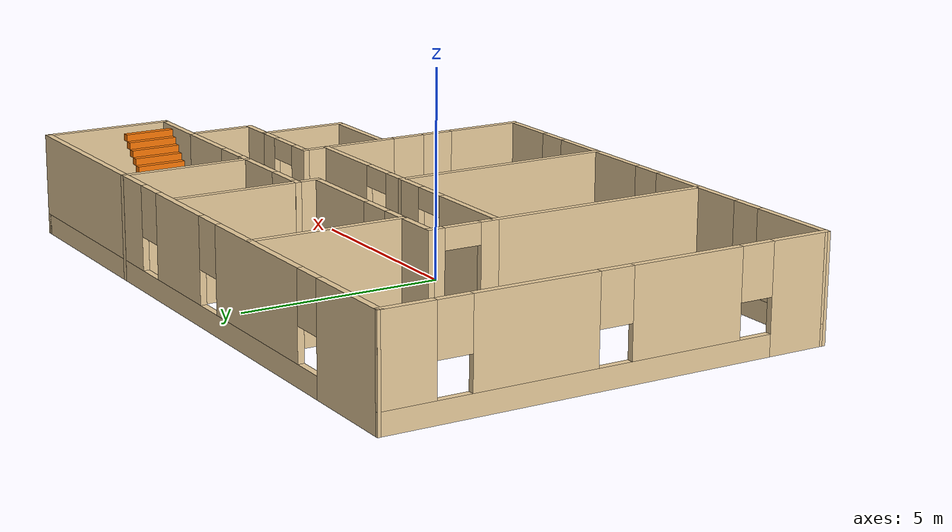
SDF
<?xml version='1.0'?>
<sdf version='1.6'>
  <model name='Office'>
    <pose frame=''>0.080241 0.79518 0 0 -0 0</pose>
    <link name='Stairs_0'>
      <visual name='Stairs_0_Visual_0'>
        <pose frame=''>4.98619 3.06018 0.083333 0 -0 1.5708</pose>
        <geometry>
          <box>
            <size>1.22684 0.167548 0.166667</size>
          </box>
        </geometry>
        <material>
          <script>
            <uri>file://media/materials/scripts/gazebo.material</uri>
            <name>Gazebo/Grey</name>
          </script>
          <ambient>0.996078 0.47451 0.0196078 1</ambient>
        </material>
        <meta>
          <layer>0</layer>
        </meta>
      </visual>
      <collision name='Stairs_0_Collision_0'>
        <geometry>
          <box>
            <size>1.22684 0.167548 0.166667</size>
          </box>
        </geometry>
        <pose frame=''>4.98619 3.06018 0.083333 0 -0 1.5708</pose>
      </collision>
      <visual name='Stairs_0_Visual_1'>
        <pose frame=''>5.15374 3.06018 0.25 0 -0 1.5708</pose>
        <geometry>
          <box>
            <size>1.22684 0.167548 0.166667</size>
          </box>
        </geometry>
        <material>
          <script>
            <uri>file://media/materials/scripts/gazebo.material</uri>
            <name>Gazebo/Grey</name>
          </script>
          <ambient>0.996078 0.47451 0.0196078 1</ambient>
        </material>
        <meta>
          <layer>0</layer>
        </meta>
      </visual>
      <collision name='Stairs_0_Collision_1'>
        <geometry>
          <box>
            <size>1.22684 0.167548 0.166667</size>
          </box>
        </geometry>
        <pose frame=''>5.15374 3.06018 0.25 0 -0 1.5708</pose>
      </collision>
      <visual name='Stairs_0_Visual_2'>
        <pose frame=''>5.32128 3.06018 0.416667 0 -0 1.5708</pose>
        <geometry>
          <box>
            <size>1.22684 0.167548 0.166667</size>
          </box>
        </geometry>
        <material>
          <script>
            <uri>file://media/materials/scripts/gazebo.material</uri>
            <name>Gazebo/Grey</name>
          </script>
          <ambient>0.996078 0.47451 0.0196078 1</ambient>
        </material>
        <meta>
          <layer>0</layer>
        </meta>
      </visual>
      <collision name='Stairs_0_Collision_2'>
        <geometry>
          <box>
            <size>1.22684 0.167548 0.166667</size>
          </box>
        </geometry>
        <pose frame=''>5.32128 3.06018 0.416667 0 -0 1.5708</pose>
      </collision>
      <visual name='Stairs_0_Visual_3'>
        <pose frame=''>5.48883 3.06018 0.583333 0 -0 1.5708</pose>
        <geometry>
          <box>
            <size>1.22684 0.167548 0.166667</size>
          </box>
        </geometry>
        <material>
          <script>
            <uri>file://media/materials/scripts/gazebo.material</uri>
            <name>Gazebo/Grey</name>
          </script>
          <ambient>0.996078 0.47451 0.0196078 1</ambient>
        </material>
        <meta>
          <layer>0</layer>
        </meta>
      </visual>
      <collision name='Stairs_0_Collision_3'>
        <geometry>
          <box>
            <size>1.22684 0.167548 0.166667</size>
          </box>
        </geometry>
        <pose frame=''>5.48883 3.06018 0.583333 0 -0 1.5708</pose>
      </collision>
      <visual name='Stairs_0_Visual_4'>
        <pose frame=''>5.65638 3.06018 0.75 0 -0 1.5708</pose>
        <geometry>
          <box>
            <size>1.22684 0.167548 0.166667</size>
          </box>
        </geometry>
        <material>
          <script>
            <uri>file://media/materials/scripts/gazebo.material</uri>
            <name>Gazebo/Grey</name>
          </script>
          <ambient>0.996078 0.47451 0.0196078 1</ambient>
        </material>
        <meta>
          <layer>0</layer>
        </meta>
      </visual>
      <collision name='Stairs_0_Collision_4'>
        <geometry>
          <box>
            <size>1.22684 0.167548 0.166667</size>
          </box>
        </geometry>
        <pose frame=''>5.65638 3.06018 0.75 0 -0 1.5708</pose>
      </collision>
      <visual name='Stairs_0_Visual_5'>
        <pose frame=''>5.82393 3.06018 0.916667 0 -0 1.5708</pose>
        <geometry>
          <box>
            <size>1.22684 0.167548 0.166667</size>
          </box>
        </geometry>
        <material>
          <script>
            <uri>file://media/materials/scripts/gazebo.material</uri>
            <name>Gazebo/Grey</name>
          </script>
          <ambient>0.996078 0.47451 0.0196078 1</ambient>
        </material>
        <meta>
          <layer>0</layer>
        </meta>
      </visual>
      <collision name='Stairs_0_Collision_5'>
        <geometry>
          <box>
            <size>1.22684 0.167548 0.166667</size>
          </box>
        </geometry>
        <pose frame=''>5.82393 3.06018 0.916667 0 -0 1.5708</pose>
      </collision>
      <visual name='Stairs_0_Visual_6'>
        <pose frame=''>5.99148 3.06018 1.08333 0 -0 1.5708</pose>
        <geometry>
          <box>
            <size>1.22684 0.167548 0.166667</size>
          </box>
        </geometry>
        <material>
          <script>
            <uri>file://media/materials/scripts/gazebo.material</uri>
            <name>Gazebo/Grey</name>
          </script>
          <ambient>0.996078 0.47451 0.0196078 1</ambient>
        </material>
        <meta>
          <layer>0</layer>
        </meta>
      </visual>
      <collision name='Stairs_0_Collision_6'>
        <geometry>
          <box>
            <size>1.22684 0.167548 0.166667</size>
          </box>
        </geometry>
        <pose frame=''>5.99148 3.06018 1.08333 0 -0 1.5708</pose>
      </collision>
      <visual name='Stairs_0_Visual_7'>
        <pose frame=''>6.15903 3.06018 1.25 0 -0 1.5708</pose>
        <geometry>
          <box>
            <size>1.22684 0.167548 0.166667</size>
          </box>
        </geometry>
        <material>
          <script>
            <uri>file://media/materials/scripts/gazebo.material</uri>
            <name>Gazebo/Grey</name>
          </script>
          <ambient>0.996078 0.47451 0.0196078 1</ambient>
        </material>
        <meta>
          <layer>0</layer>
        </meta>
      </visual>
      <collision name='Stairs_0_Collision_7'>
        <geometry>
          <box>
            <size>1.22684 0.167548 0.166667</size>
          </box>
        </geometry>
        <pose frame=''>6.15903 3.06018 1.25 0 -0 1.5708</pose>
      </collision>
      <visual name='Stairs_0_Visual_8'>
        <pose frame=''>6.32658 3.06018 1.41667 0 -0 1.5708</pose>
        <geometry>
          <box>
            <size>1.22684 0.167548 0.166667</size>
          </box>
        </geometry>
        <material>
          <script>
            <uri>file://media/materials/scripts/gazebo.material</uri>
            <name>Gazebo/Grey</name>
          </script>
          <ambient>0.996078 0.47451 0.0196078 1</ambient>
        </material>
        <meta>
          <layer>0</layer>
        </meta>
      </visual>
      <collision name='Stairs_0_Collision_8'>
        <geometry>
          <box>
            <size>1.22684 0.167548 0.166667</size>
          </box>
        </geometry>
        <pose frame=''>6.32658 3.06018 1.41667 0 -0 1.5708</pose>
      </collision>
      <visual name='Stairs_0_Visual_9'>
        <pose frame=''>6.49412 3.06018 1.58333 0 -0 1.5708</pose>
        <geometry>
          <box>
            <size>1.22684 0.167548 0.166667</size>
          </box>
        </geometry>
        <material>
          <script>
            <uri>file://media/materials/scripts/gazebo.material</uri>
            <name>Gazebo/Grey</name>
          </script>
          <ambient>0.996078 0.47451 0.0196078 1</ambient>
        </material>
        <meta>
          <layer>0</layer>
        </meta>
      </visual>
      <collision name='Stairs_0_Collision_9'>
        <geometry>
          <box>
            <size>1.22684 0.167548 0.166667</size>
          </box>
        </geometry>
        <pose frame=''>6.49412 3.06018 1.58333 0 -0 1.5708</pose>
      </collision>
      <visual name='Stairs_0_Visual_10'>
        <pose frame=''>6.66167 3.06018 1.75 0 -0 1.5708</pose>
        <geometry>
          <box>
            <size>1.22684 0.167548 0.166667</size>
          </box>
        </geometry>
        <material>
          <script>
            <uri>file://media/materials/scripts/gazebo.material</uri>
            <name>Gazebo/Grey</name>
          </script>
          <ambient>0.996078 0.47451 0.0196078 1</ambient>
        </material>
        <meta>
          <layer>0</layer>
        </meta>
      </visual>
      <collision name='Stairs_0_Collision_10'>
        <geometry>
          <box>
            <size>1.22684 0.167548 0.166667</size>
          </box>
        </geometry>
        <pose frame=''>6.66167 3.06018 1.75 0 -0 1.5708</pose>
      </collision>
      <visual name='Stairs_0_Visual_11'>
        <pose frame=''>6.82922 3.06018 1.91667 0 -0 1.5708</pose>
        <geometry>
          <box>
            <size>1.22684 0.167548 0.166667</size>
          </box>
        </geometry>
        <material>
          <script>
            <uri>file://media/materials/scripts/gazebo.material</uri>
            <name>Gazebo/Grey</name>
          </script>
          <ambient>0.996078 0.47451 0.0196078 1</ambient>
        </material>
        <meta>
          <layer>0</layer>
        </meta>
      </visual>
      <collision name='Stairs_0_Collision_11'>
        <geometry>
          <box>
            <size>1.22684 0.167548 0.166667</size>
          </box>
        </geometry>
        <pose frame=''>6.82922 3.06018 1.91667 0 -0 1.5708</pose>
      </collision>
      <visual name='Stairs_0_Visual_12'>
        <pose frame=''>6.99677 3.06018 2.08333 0 -0 1.5708</pose>
        <geometry>
          <box>
            <size>1.22684 0.167548 0.166667</size>
          </box>
        </geometry>
        <material>
          <script>
            <uri>file://media/materials/scripts/gazebo.material</uri>
            <name>Gazebo/Grey</name>
          </script>
          <ambient>0.996078 0.47451 0.0196078 1</ambient>
        </material>
        <meta>
          <layer>0</layer>
        </meta>
      </visual>
      <collision name='Stairs_0_Collision_12'>
        <geometry>
          <box>
            <size>1.22684 0.167548 0.166667</size>
          </box>
        </geometry>
        <pose frame=''>6.99677 3.06018 2.08333 0 -0 1.5708</pose>
      </collision>
      <visual name='Stairs_0_Visual_13'>
        <pose frame=''>7.16432 3.06018 2.25 0 -0 1.5708</pose>
        <geometry>
          <box>
            <size>1.22684 0.167548 0.166667</size>
          </box>
        </geometry>
        <material>
          <script>
            <uri>file://media/materials/scripts/gazebo.material</uri>
            <name>Gazebo/Grey</name>
          </script>
          <ambient>0.996078 0.47451 0.0196078 1</ambient>
        </material>
        <meta>
          <layer>0</layer>
        </meta>
      </visual>
      <collision name='Stairs_0_Collision_13'>
        <geometry>
          <box>
            <size>1.22684 0.167548 0.166667</size>
          </box>
        </geometry>
        <pose frame=''>7.16432 3.06018 2.25 0 -0 1.5708</pose>
      </collision>
      <visual name='Stairs_0_Visual_14'>
        <pose frame=''>7.33186 3.06018 2.41667 0 -0 1.5708</pose>
        <geometry>
          <box>
            <size>1.22684 0.167548 0.166667</size>
          </box>
        </geometry>
        <material>
          <script>
            <uri>file://media/materials/scripts/gazebo.material</uri>
            <name>Gazebo/Grey</name>
          </script>
          <ambient>0.996078 0.47451 0.0196078 1</ambient>
        </material>
        <meta>
          <layer>0</layer>
        </meta>
      </visual>
      <collision name='Stairs_0_Collision_14'>
        <geometry>
          <box>
            <size>1.22684 0.167548 0.166667</size>
          </box>
        </geometry>
        <pose frame=''>7.33186 3.06018 2.41667 0 -0 1.5708</pose>
      </collision>
    </link>
    <link name='Wall_0'>
      <pose frame=''>0.025175 5.32428 0 0 -0 0</pose>
      <visual name='Wall_0_Visual_0'>
        <pose frame=''>-7.05748 0 1.25 0 -0 0</pose>
        <geometry>
          <box>
            <size>2.38504 0.15 2.5</size>
          </box>
        </geometry>
        <material>
          <script>
            <uri>file://media/materials/scripts/gazebo.material</uri>
            <name>Gazebo/Grey</name>
          </script>
          <ambient>0.921569 0.807843 0.615686 1</ambient>
        </material>
        <meta>
          <layer>0</layer>
        </meta>
      </visual>
      <collision name='Wall_0_Collision_0'>
        <geometry>
          <box>
            <size>2.38504 0.15 2.5</size>
          </box>
        </geometry>
        <pose frame=''>-7.05748 0 1.25 0 -0 0</pose>
      </collision>
      <visual name='Wall_0_Visual_1'>
        <pose frame=''>1.19252 0 0.25 0 -0 0</pose>
        <geometry>
          <box>
            <size>14.115 0.15 0.5</size>
          </box>
        </geometry>
        <material>
          <script>
            <uri>file://media/materials/scripts/gazebo.material</uri>
            <name>Gazebo/Grey</name>
          </script>
          <ambient>0.921569 0.807843 0.615686 1</ambient>
        </material>
        <meta>
          <layer>0</layer>
        </meta>
      </visual>
      <collision name='Wall_0_Collision_1'>
        <geometry>
          <box>
            <size>14.115 0.15 0.5</size>
          </box>
        </geometry>
        <pose frame=''>1.19252 0 0.25 0 -0 0</pose>
      </collision>
      <visual name='Wall_0_Visual_2'>
        <pose frame=''>-3.21496 0 1.5 0 -0 0</pose>
        <geometry>
          <box>
            <size>3.7 0.15 2</size>
          </box>
        </geometry>
        <material>
          <script>
            <uri>file://media/materials/scripts/gazebo.material</uri>
            <name>Gazebo/Grey</name>
          </script>
          <ambient>0.921569 0.807843 0.615686 1</ambient>
        </material>
        <meta>
          <layer>0</layer>
        </meta>
      </visual>
      <collision name='Wall_0_Collision_2'>
        <geometry>
          <box>
            <size>3.7 0.15 2</size>
          </box>
        </geometry>
        <pose frame=''>-3.21496 0 1.5 0 -0 0</pose>
      </collision>
      <visual name='Wall_0_Visual_3'>
        <pose frame=''>0.545041 0 1.5 0 -0 0</pose>
        <geometry>
          <box>
            <size>2.22 0.15 2</size>
          </box>
        </geometry>
        <material>
          <script>
            <uri>file://media/materials/scripts/gazebo.material</uri>
            <name>Gazebo/Grey</name>
          </script>
          <ambient>0.921569 0.807843 0.615686 1</ambient>
        </material>
        <meta>
          <layer>0</layer>
        </meta>
      </visual>
      <collision name='Wall_0_Collision_3'>
        <geometry>
          <box>
            <size>2.22 0.15 2</size>
          </box>
        </geometry>
        <pose frame=''>0.545041 0 1.5 0 -0 0</pose>
      </collision>
      <visual name='Wall_0_Visual_4'>
        <pose frame=''>5.35252 0 1.5 0 -0 0</pose>
        <geometry>
          <box>
            <size>5.79496 0.15 2</size>
          </box>
        </geometry>
        <material>
          <script>
            <uri>file://media/materials/scripts/gazebo.material</uri>
            <name>Gazebo/Grey</name>
          </script>
          <ambient>0.921569 0.807843 0.615686 1</ambient>
        </material>
        <meta>
          <layer>0</layer>
        </meta>
      </visual>
      <collision name='Wall_0_Collision_4'>
        <geometry>
          <box>
            <size>5.79496 0.15 2</size>
          </box>
        </geometry>
        <pose frame=''>5.35252 0 1.5 0 -0 0</pose>
      </collision>
      <visual name='Wall_0_Visual_5'>
        <pose frame=''>-5.46496 0 1.9 0 -0 0</pose>
        <geometry>
          <box>
            <size>0.8 0.15 1.2</size>
          </box>
        </geometry>
        <material>
          <script>
            <uri>file://media/materials/scripts/gazebo.material</uri>
            <name>Gazebo/Grey</name>
          </script>
          <ambient>0.921569 0.807843 0.615686 1</ambient>
        </material>
        <meta>
          <layer>0</layer>
        </meta>
      </visual>
      <collision name='Wall_0_Collision_5'>
        <geometry>
          <box>
            <size>0.8 0.15 1.2</size>
          </box>
        </geometry>
        <pose frame=''>-5.46496 0 1.9 0 -0 0</pose>
      </collision>
      <visual name='Wall_0_Visual_6'>
        <pose frame=''>-0.964959 0 1.9 0 -0 0</pose>
        <geometry>
          <box>
            <size>0.8 0.15 1.2</size>
          </box>
        </geometry>
        <material>
          <script>
            <uri>file://media/materials/scripts/gazebo.material</uri>
            <name>Gazebo/Grey</name>
          </script>
          <ambient>0.921569 0.807843 0.615686 1</ambient>
        </material>
        <meta>
          <layer>0</layer>
        </meta>
      </visual>
      <collision name='Wall_0_Collision_6'>
        <geometry>
          <box>
            <size>0.8 0.15 1.2</size>
          </box>
        </geometry>
        <pose frame=''>-0.964959 0 1.9 0 -0 0</pose>
      </collision>
      <visual name='Wall_0_Visual_7'>
        <pose frame=''>2.05504 0 1.9 0 -0 0</pose>
        <geometry>
          <box>
            <size>0.8 0.15 1.2</size>
          </box>
        </geometry>
        <material>
          <script>
            <uri>file://media/materials/scripts/gazebo.material</uri>
            <name>Gazebo/Grey</name>
          </script>
          <ambient>0.921569 0.807843 0.615686 1</ambient>
        </material>
        <meta>
          <layer>0</layer>
        </meta>
      </visual>
      <collision name='Wall_0_Collision_7'>
        <geometry>
          <box>
            <size>0.8 0.15 1.2</size>
          </box>
        </geometry>
        <pose frame=''>2.05504 0 1.9 0 -0 0</pose>
      </collision>
    </link>
    <link name='Wall_10'>
      <pose frame=''>-2.27482 -5.32572 0 0 -0 3.14159</pose>
      <visual name='Wall_10_Visual_0'>
        <pose frame=''>-5.24752 0 1.25 0 -0 0</pose>
        <geometry>
          <box>
            <size>1.50496 0.15 2.5</size>
          </box>
        </geometry>
        <material>
          <script>
            <uri>file://media/materials/scripts/gazebo.material</uri>
            <name>Gazebo/Grey</name>
          </script>
          <ambient>0.921569 0.807843 0.615686 1</ambient>
        </material>
        <meta>
          <layer>0</layer>
        </meta>
      </visual>
      <collision name='Wall_10_Collision_0'>
        <geometry>
          <box>
            <size>1.50496 0.15 2.5</size>
          </box>
        </geometry>
        <pose frame=''>-5.24752 0 1.25 0 -0 0</pose>
      </collision>
      <visual name='Wall_10_Visual_1'>
        <pose frame=''>0.75248 0 0.25 0 -0 0</pose>
        <geometry>
          <box>
            <size>10.495 0.15 0.5</size>
          </box>
        </geometry>
        <material>
          <script>
            <uri>file://media/materials/scripts/gazebo.material</uri>
            <name>Gazebo/Grey</name>
          </script>
          <ambient>0.921569 0.807843 0.615686 1</ambient>
        </material>
        <meta>
          <layer>0</layer>
        </meta>
      </visual>
      <collision name='Wall_10_Collision_1'>
        <geometry>
          <box>
            <size>10.495 0.15 0.5</size>
          </box>
        </geometry>
        <pose frame=''>0.75248 0 0.25 0 -0 0</pose>
      </collision>
      <visual name='Wall_10_Visual_2'>
        <pose frame=''>-2.16504 0 1.5 0 -0 0</pose>
        <geometry>
          <box>
            <size>3.06 0.15 2</size>
          </box>
        </geometry>
        <material>
          <script>
            <uri>file://media/materials/scripts/gazebo.material</uri>
            <name>Gazebo/Grey</name>
          </script>
          <ambient>0.921569 0.807843 0.615686 1</ambient>
        </material>
        <meta>
          <layer>0</layer>
        </meta>
      </visual>
      <collision name='Wall_10_Collision_2'>
        <geometry>
          <box>
            <size>3.06 0.15 2</size>
          </box>
        </geometry>
        <pose frame=''>-2.16504 0 1.5 0 -0 0</pose>
      </collision>
      <visual name='Wall_10_Visual_3'>
        <pose frame=''>1.58496 0 1.5 0 -0 0</pose>
        <geometry>
          <box>
            <size>2.84 0.15 2</size>
          </box>
        </geometry>
        <material>
          <script>
            <uri>file://media/materials/scripts/gazebo.material</uri>
            <name>Gazebo/Grey</name>
          </script>
          <ambient>0.921569 0.807843 0.615686 1</ambient>
        </material>
        <meta>
          <layer>0</layer>
        </meta>
      </visual>
      <collision name='Wall_10_Collision_3'>
        <geometry>
          <box>
            <size>2.84 0.15 2</size>
          </box>
        </geometry>
        <pose frame=''>1.58496 0 1.5 0 -0 0</pose>
      </collision>
      <visual name='Wall_10_Visual_4'>
        <pose frame=''>4.90248 0 1.5 0 -0 0</pose>
        <geometry>
          <box>
            <size>2.19504 0.15 2</size>
          </box>
        </geometry>
        <material>
          <script>
            <uri>file://media/materials/scripts/gazebo.material</uri>
            <name>Gazebo/Grey</name>
          </script>
          <ambient>0.921569 0.807843 0.615686 1</ambient>
        </material>
        <meta>
          <layer>0</layer>
        </meta>
      </visual>
      <collision name='Wall_10_Collision_4'>
        <geometry>
          <box>
            <size>2.19504 0.15 2</size>
          </box>
        </geometry>
        <pose frame=''>4.90248 0 1.5 0 -0 0</pose>
      </collision>
      <visual name='Wall_10_Visual_5'>
        <pose frame=''>-4.09504 0 1.9 0 -0 0</pose>
        <geometry>
          <box>
            <size>0.8 0.15 1.2</size>
          </box>
        </geometry>
        <material>
          <script>
            <uri>file://media/materials/scripts/gazebo.material</uri>
            <name>Gazebo/Grey</name>
          </script>
          <ambient>0.921569 0.807843 0.615686 1</ambient>
        </material>
        <meta>
          <layer>0</layer>
        </meta>
      </visual>
      <collision name='Wall_10_Collision_5'>
        <geometry>
          <box>
            <size>0.8 0.15 1.2</size>
          </box>
        </geometry>
        <pose frame=''>-4.09504 0 1.9 0 -0 0</pose>
      </collision>
      <visual name='Wall_10_Visual_6'>
        <pose frame=''>-0.235041 0 1.9 0 -0 0</pose>
        <geometry>
          <box>
            <size>0.8 0.15 1.2</size>
          </box>
        </geometry>
        <material>
          <script>
            <uri>file://media/materials/scripts/gazebo.material</uri>
            <name>Gazebo/Grey</name>
          </script>
          <ambient>0.921569 0.807843 0.615686 1</ambient>
        </material>
        <meta>
          <layer>0</layer>
        </meta>
      </visual>
      <collision name='Wall_10_Collision_6'>
        <geometry>
          <box>
            <size>0.8 0.15 1.2</size>
          </box>
        </geometry>
        <pose frame=''>-0.235041 0 1.9 0 -0 0</pose>
      </collision>
      <visual name='Wall_10_Visual_7'>
        <pose frame=''>3.40496 0 1.9 0 -0 0</pose>
        <geometry>
          <box>
            <size>0.8 0.15 1.2</size>
          </box>
        </geometry>
        <material>
          <script>
            <uri>file://media/materials/scripts/gazebo.material</uri>
            <name>Gazebo/Grey</name>
          </script>
          <ambient>0.921569 0.807843 0.615686 1</ambient>
        </material>
        <meta>
          <layer>0</layer>
        </meta>
      </visual>
      <collision name='Wall_10_Collision_7'>
        <geometry>
          <box>
            <size>0.8 0.15 1.2</size>
          </box>
        </geometry>
        <pose frame=''>3.40496 0 1.9 0 -0 0</pose>
      </collision>
    </link>
    <link name='Wall_11'>
      <pose frame=''>-8.17483 -0.000721 0 0 -0 1.5661</pose>
      <visual name='Wall_11_Visual_0'>
        <pose frame=''>-4.65792 0 1.25 0 -0 0</pose>
        <geometry>
          <box>
            <size>1.48428 0.15 2.5</size>
          </box>
        </geometry>
        <material>
          <script>
            <uri>file://media/materials/scripts/gazebo.material</uri>
            <name>Gazebo/Grey</name>
          </script>
          <ambient>0.921569 0.807843 0.615686 1</ambient>
        </material>
        <meta>
          <layer>0</layer>
        </meta>
      </visual>
      <collision name='Wall_11_Collision_0'>
        <geometry>
          <box>
            <size>1.48428 0.15 2.5</size>
          </box>
        </geometry>
        <pose frame=''>-4.65792 0 1.25 0 -0 0</pose>
      </collision>
      <visual name='Wall_11_Visual_1'>
        <pose frame=''>0.742138 0 0.25 0 -0 0</pose>
        <geometry>
          <box>
            <size>9.31584 0.15 0.5</size>
          </box>
        </geometry>
        <material>
          <script>
            <uri>file://media/materials/scripts/gazebo.material</uri>
            <name>Gazebo/Grey</name>
          </script>
          <ambient>0.921569 0.807843 0.615686 1</ambient>
        </material>
        <meta>
          <layer>0</layer>
        </meta>
      </visual>
      <collision name='Wall_11_Collision_1'>
        <geometry>
          <box>
            <size>9.31584 0.15 0.5</size>
          </box>
        </geometry>
        <pose frame=''>0.742138 0 0.25 0 -0 0</pose>
      </collision>
      <visual name='Wall_11_Visual_2'>
        <pose frame=''>-1.7658 0 1.5 0 -0 0</pose>
        <geometry>
          <box>
            <size>2.69996 0.15 2</size>
          </box>
        </geometry>
        <material>
          <script>
            <uri>file://media/materials/scripts/gazebo.material</uri>
            <name>Gazebo/Grey</name>
          </script>
          <ambient>0.921569 0.807843 0.615686 1</ambient>
        </material>
        <meta>
          <layer>0</layer>
        </meta>
      </visual>
      <collision name='Wall_11_Collision_2'>
        <geometry>
          <box>
            <size>2.69996 0.15 2</size>
          </box>
        </geometry>
        <pose frame=''>-1.7658 0 1.5 0 -0 0</pose>
      </collision>
      <visual name='Wall_11_Visual_3'>
        <pose frame=''>1.84425 0 1.5 0 -0 0</pose>
        <geometry>
          <box>
            <size>2.92015 0.15 2</size>
          </box>
        </geometry>
        <material>
          <script>
            <uri>file://media/materials/scripts/gazebo.material</uri>
            <name>Gazebo/Grey</name>
          </script>
          <ambient>0.921569 0.807843 0.615686 1</ambient>
        </material>
        <meta>
          <layer>0</layer>
        </meta>
      </visual>
      <collision name='Wall_11_Collision_3'>
        <geometry>
          <box>
            <size>2.92015 0.15 2</size>
          </box>
        </geometry>
        <pose frame=''>1.84425 0 1.5 0 -0 0</pose>
      </collision>
      <visual name='Wall_11_Visual_4'>
        <pose frame=''>4.75219 0 1.5 0 -0 0</pose>
        <geometry>
          <box>
            <size>1.29573 0.15 2</size>
          </box>
        </geometry>
        <material>
          <script>
            <uri>file://media/materials/scripts/gazebo.material</uri>
            <name>Gazebo/Grey</name>
          </script>
          <ambient>0.921569 0.807843 0.615686 1</ambient>
        </material>
        <meta>
          <layer>0</layer>
        </meta>
      </visual>
      <collision name='Wall_11_Collision_4'>
        <geometry>
          <box>
            <size>1.29573 0.15 2</size>
          </box>
        </geometry>
        <pose frame=''>4.75219 0 1.5 0 -0 0</pose>
      </collision>
      <visual name='Wall_11_Visual_5'>
        <pose frame=''>-3.51578 0 1.9 0 -0 0</pose>
        <geometry>
          <box>
            <size>0.8 0.15 1.2</size>
          </box>
        </geometry>
        <material>
          <script>
            <uri>file://media/materials/scripts/gazebo.material</uri>
            <name>Gazebo/Grey</name>
          </script>
          <ambient>0.921569 0.807843 0.615686 1</ambient>
        </material>
        <meta>
          <layer>0</layer>
        </meta>
      </visual>
      <collision name='Wall_11_Collision_5'>
        <geometry>
          <box>
            <size>0.8 0.15 1.2</size>
          </box>
        </geometry>
        <pose frame=''>-3.51578 0 1.9 0 -0 0</pose>
      </collision>
      <visual name='Wall_11_Visual_6'>
        <pose frame=''>-0.015821 0 1.9 0 -0 0</pose>
        <geometry>
          <box>
            <size>0.8 0.15 1.2</size>
          </box>
        </geometry>
        <material>
          <script>
            <uri>file://media/materials/scripts/gazebo.material</uri>
            <name>Gazebo/Grey</name>
          </script>
          <ambient>0.921569 0.807843 0.615686 1</ambient>
        </material>
        <meta>
          <layer>0</layer>
        </meta>
      </visual>
      <collision name='Wall_11_Collision_6'>
        <geometry>
          <box>
            <size>0.8 0.15 1.2</size>
          </box>
        </geometry>
        <pose frame=''>-0.015821 0 1.9 0 -0 0</pose>
      </collision>
      <visual name='Wall_11_Visual_7'>
        <pose frame=''>3.70433 0 1.9 0 -0 0</pose>
        <geometry>
          <box>
            <size>0.8 0.15 1.2</size>
          </box>
        </geometry>
        <material>
          <script>
            <uri>file://media/materials/scripts/gazebo.material</uri>
            <name>Gazebo/Grey</name>
          </script>
          <ambient>0.921569 0.807843 0.615686 1</ambient>
        </material>
        <meta>
          <layer>0</layer>
        </meta>
      </visual>
      <collision name='Wall_11_Collision_7'>
        <geometry>
          <box>
            <size>0.8 0.15 1.2</size>
          </box>
        </geometry>
        <pose frame=''>3.70433 0 1.9 0 -0 0</pose>
      </collision>
    </link>
    <link name='Wall_17'>
      <collision name='Wall_17_Collision'>
        <geometry>
          <box>
            <size>3.75 0.15 2.5</size>
          </box>
        </geometry>
        <pose frame=''>0 0 1.25 0 -0 0</pose>
      </collision>
      <visual name='Wall_17_Visual'>
        <pose frame=''>0 0 1.25 0 -0 0</pose>
        <geometry>
          <box>
            <size>3.75 0.15 2.5</size>
          </box>
        </geometry>
        <material>
          <script>
            <uri>file://media/materials/scripts/gazebo.material</uri>
            <name>Gazebo/Grey</name>
          </script>
          <ambient>0.921569 0.807843 0.615686 1</ambient>
        </material>
        <meta>
          <layer>0</layer>
        </meta>
      </visual>
      <pose frame=''>-2.84156 3.50339 0 0 0 -1.5708</pose>
    </link>
    <link name='Wall_18'>
      <pose frame=''>-0.916561 1.70339 0 0 -0 0</pose>
      <visual name='Wall_18_Visual_0'>
        <pose frame=''>-1.63467 0 1.25 0 -0 0</pose>
        <geometry>
          <box>
            <size>0.730668 0.15 2.5</size>
          </box>
        </geometry>
        <material>
          <script>
            <uri>file://media/materials/scripts/gazebo.material</uri>
            <name>Gazebo/Grey</name>
          </script>
          <ambient>0.921569 0.807843 0.615686 1</ambient>
        </material>
        <meta>
          <layer>0</layer>
        </meta>
      </visual>
      <collision name='Wall_18_Collision_0'>
        <geometry>
          <box>
            <size>0.730668 0.15 2.5</size>
          </box>
        </geometry>
        <pose frame=''>-1.63467 0 1.25 0 -0 0</pose>
      </collision>
      <visual name='Wall_18_Visual_1'>
        <pose frame=''>0.815334 0 1.25 0 -0 0</pose>
        <geometry>
          <box>
            <size>2.36933 0.15 2.5</size>
          </box>
        </geometry>
        <material>
          <script>
            <uri>file://media/materials/scripts/gazebo.material</uri>
            <name>Gazebo/Grey</name>
          </script>
          <ambient>0.921569 0.807843 0.615686 1</ambient>
        </material>
        <meta>
          <layer>0</layer>
        </meta>
      </visual>
      <collision name='Wall_18_Collision_1'>
        <geometry>
          <box>
            <size>2.36933 0.15 2.5</size>
          </box>
        </geometry>
        <pose frame=''>0.815334 0 1.25 0 -0 0</pose>
      </collision>
      <visual name='Wall_18_Visual_2'>
        <pose frame=''>-0.819332 0 2.25 0 -0 0</pose>
        <geometry>
          <box>
            <size>0.9 0.15 0.5</size>
          </box>
        </geometry>
        <material>
          <script>
            <uri>file://media/materials/scripts/gazebo.material</uri>
            <name>Gazebo/Grey</name>
          </script>
          <ambient>0.921569 0.807843 0.615686 1</ambient>
        </material>
        <meta>
          <layer>0</layer>
        </meta>
      </visual>
      <collision name='Wall_18_Collision_2'>
        <geometry>
          <box>
            <size>0.9 0.15 0.5</size>
          </box>
        </geometry>
        <pose frame=''>-0.819332 0 2.25 0 -0 0</pose>
      </collision>
    </link>
    <link name='Wall_19'>
      <collision name='Wall_19_Collision'>
        <geometry>
          <box>
            <size>3.75 0.15 2.5</size>
          </box>
        </geometry>
        <pose frame=''>0 0 1.25 0 -0 0</pose>
      </collision>
      <visual name='Wall_19_Visual'>
        <pose frame=''>0 0 1.25 0 -0 0</pose>
        <geometry>
          <box>
            <size>3.75 0.15 2.5</size>
          </box>
        </geometry>
        <material>
          <script>
            <uri>file://media/materials/scripts/gazebo.material</uri>
            <name>Gazebo/Grey</name>
          </script>
          <ambient>0.921569 0.807843 0.615686 1</ambient>
        </material>
        <meta>
          <layer>0</layer>
        </meta>
      </visual>
      <pose frame=''>1.00844 3.50339 0 0 -0 1.5708</pose>
    </link>
    <link name='Wall_22'>
      <pose frame=''>3.80017 2.22428 0 0 -0 3.14159</pose>
      <visual name='Wall_22_Visual_0'>
        <pose frame=''>-1.91897 0 1.25 0 -0 0</pose>
        <geometry>
          <box>
            <size>1.91207 0.15 2.5</size>
          </box>
        </geometry>
        <material>
          <script>
            <uri>file://media/materials/scripts/gazebo.material</uri>
            <name>Gazebo/Grey</name>
          </script>
          <ambient>0.921569 0.807843 0.615686 1</ambient>
        </material>
        <meta>
          <layer>0</layer>
        </meta>
      </visual>
      <collision name='Wall_22_Collision_0'>
        <geometry>
          <box>
            <size>1.91207 0.15 2.5</size>
          </box>
        </geometry>
        <pose frame=''>-1.91897 0 1.25 0 -0 0</pose>
      </collision>
      <visual name='Wall_22_Visual_1'>
        <pose frame=''>0.821068 0 1.25 0 -0 0</pose>
        <geometry>
          <box>
            <size>1.768 0.15 2.5</size>
          </box>
        </geometry>
        <material>
          <script>
            <uri>file://media/materials/scripts/gazebo.material</uri>
            <name>Gazebo/Grey</name>
          </script>
          <ambient>0.921569 0.807843 0.615686 1</ambient>
        </material>
        <meta>
          <layer>0</layer>
        </meta>
      </visual>
      <collision name='Wall_22_Collision_1'>
        <geometry>
          <box>
            <size>1.768 0.15 2.5</size>
          </box>
        </geometry>
        <pose frame=''>0.821068 0 1.25 0 -0 0</pose>
      </collision>
      <visual name='Wall_22_Visual_2'>
        <pose frame=''>2.74003 0 1.25 0 -0 0</pose>
        <geometry>
          <box>
            <size>0.269932 0.15 2.5</size>
          </box>
        </geometry>
        <material>
          <script>
            <uri>file://media/materials/scripts/gazebo.material</uri>
            <name>Gazebo/Grey</name>
          </script>
          <ambient>0.921569 0.807843 0.615686 1</ambient>
        </material>
        <meta>
          <layer>0</layer>
        </meta>
      </visual>
      <collision name='Wall_22_Collision_2'>
        <geometry>
          <box>
            <size>0.269932 0.15 2.5</size>
          </box>
        </geometry>
        <pose frame=''>2.74003 0 1.25 0 -0 0</pose>
      </collision>
      <visual name='Wall_22_Visual_3'>
        <pose frame=''>-0.512932 0 2.25 0 -0 0</pose>
        <geometry>
          <box>
            <size>0.9 0.15 0.5</size>
          </box>
        </geometry>
        <material>
          <script>
            <uri>file://media/materials/scripts/gazebo.material</uri>
            <name>Gazebo/Grey</name>
          </script>
          <ambient>0.921569 0.807843 0.615686 1</ambient>
        </material>
        <meta>
          <layer>0</layer>
        </meta>
      </visual>
      <collision name='Wall_22_Collision_3'>
        <geometry>
          <box>
            <size>0.9 0.15 0.5</size>
          </box>
        </geometry>
        <pose frame=''>-0.512932 0 2.25 0 -0 0</pose>
      </collision>
      <visual name='Wall_22_Visual_4'>
        <pose frame=''>2.15507 0 2.25 0 -0 0</pose>
        <geometry>
          <box>
            <size>0.9 0.15 0.5</size>
          </box>
        </geometry>
        <material>
          <script>
            <uri>file://media/materials/scripts/gazebo.material</uri>
            <name>Gazebo/Grey</name>
          </script>
          <ambient>0.921569 0.807843 0.615686 1</ambient>
        </material>
        <meta>
          <layer>0</layer>
        </meta>
      </visual>
      <collision name='Wall_22_Collision_4'>
        <geometry>
          <box>
            <size>0.9 0.15 0.5</size>
          </box>
        </geometry>
        <pose frame=''>2.15507 0 2.25 0 -0 0</pose>
      </collision>
    </link>
    <link name='Wall_26'>
      <collision name='Wall_26_Collision'>
        <geometry>
          <box>
            <size>3.25 0.15 2.5</size>
          </box>
        </geometry>
        <pose frame=''>0 0 1.25 0 -0 0</pose>
      </collision>
      <visual name='Wall_26_Visual'>
        <pose frame=''>0 0 1.25 0 -0 0</pose>
        <geometry>
          <box>
            <size>3.25 0.15 2.5</size>
          </box>
        </geometry>
        <material>
          <script>
            <uri>file://media/materials/scripts/gazebo.material</uri>
            <name>Gazebo/Grey</name>
          </script>
          <ambient>0.921569 0.807843 0.615686 1</ambient>
        </material>
        <meta>
          <layer>0</layer>
        </meta>
      </visual>
      <pose frame=''>3.54785 3.77607 0 0 0 -1.5708</pose>
    </link>
    <link name='Wall_28'>
      <pose frame=''>4.70017 0.624279 0 0 -0 3.14159</pose>
      <visual name='Wall_28_Visual_0'>
        <pose frame=''>-0.766466 0 1.25 0 -0 0</pose>
        <geometry>
          <box>
            <size>0.717068 0.15 2.5</size>
          </box>
        </geometry>
        <material>
          <script>
            <uri>file://media/materials/scripts/gazebo.material</uri>
            <name>Gazebo/Grey</name>
          </script>
          <ambient>0.921569 0.807843 0.615686 1</ambient>
        </material>
        <meta>
          <layer>0</layer>
        </meta>
      </visual>
      <collision name='Wall_28_Collision_0'>
        <geometry>
          <box>
            <size>0.717068 0.15 2.5</size>
          </box>
        </geometry>
        <pose frame=''>-0.766466 0 1.25 0 -0 0</pose>
      </collision>
      <visual name='Wall_28_Visual_1'>
        <pose frame=''>0.808534 0 1.25 0 -0 0</pose>
        <geometry>
          <box>
            <size>0.632932 0.15 2.5</size>
          </box>
        </geometry>
        <material>
          <script>
            <uri>file://media/materials/scripts/gazebo.material</uri>
            <name>Gazebo/Grey</name>
          </script>
          <ambient>0.921569 0.807843 0.615686 1</ambient>
        </material>
        <meta>
          <layer>0</layer>
        </meta>
      </visual>
      <collision name='Wall_28_Collision_1'>
        <geometry>
          <box>
            <size>0.632932 0.15 2.5</size>
          </box>
        </geometry>
        <pose frame=''>0.808534 0 1.25 0 -0 0</pose>
      </collision>
      <visual name='Wall_28_Visual_2'>
        <pose frame=''>0.042068 0 2.25 0 -0 0</pose>
        <geometry>
          <box>
            <size>0.9 0.15 0.5</size>
          </box>
        </geometry>
        <material>
          <script>
            <uri>file://media/materials/scripts/gazebo.material</uri>
            <name>Gazebo/Grey</name>
          </script>
          <ambient>0.921569 0.807843 0.615686 1</ambient>
        </material>
        <meta>
          <layer>0</layer>
        </meta>
      </visual>
      <collision name='Wall_28_Collision_2'>
        <geometry>
          <box>
            <size>0.9 0.15 0.5</size>
          </box>
        </geometry>
        <pose frame=''>0.042068 0 2.25 0 -0 0</pose>
      </collision>
    </link>
    <link name='Wall_29'>
      <collision name='Wall_29_Collision'>
        <geometry>
          <box>
            <size>2.5 0.15 2.5</size>
          </box>
        </geometry>
        <pose frame=''>0 0 1.25 0 -0 0</pose>
      </collision>
      <visual name='Wall_29_Visual'>
        <pose frame=''>0 0 1.25 0 -0 0</pose>
        <geometry>
          <box>
            <size>2.5 0.15 2.5</size>
          </box>
        </geometry>
        <material>
          <script>
            <uri>file://media/materials/scripts/gazebo.material</uri>
            <name>Gazebo/Grey</name>
          </script>
          <ambient>0.921569 0.807843 0.615686 1</ambient>
        </material>
        <meta>
          <layer>0</layer>
        </meta>
      </visual>
      <pose frame=''>3.65017 -0.550721 0 0 0 -1.5708</pose>
    </link>
    <link name='Wall_3'>
      <collision name='Wall_3_Collision'>
        <geometry>
          <box>
            <size>3.25 0.15 2.5</size>
          </box>
        </geometry>
        <pose frame=''>0 0 1.25 0 -0 0</pose>
      </collision>
      <visual name='Wall_3_Visual'>
        <pose frame=''>0 0 1.25 0 -0 0</pose>
        <geometry>
          <box>
            <size>3.25 0.15 2.5</size>
          </box>
        </geometry>
        <material>
          <script>
            <uri>file://media/materials/scripts/gazebo.material</uri>
            <name>Gazebo/Grey</name>
          </script>
          <ambient>0.921569 0.807843 0.615686 1</ambient>
        </material>
        <meta>
          <layer>0</layer>
        </meta>
      </visual>
      <pose frame=''>8.20017 3.77428 0 0 0 -1.5708</pose>
    </link>
    <link name='Wall_33'>
      <collision name='Wall_33_Collision'>
        <geometry>
          <box>
            <size>5.5 0.15 2.5</size>
          </box>
        </geometry>
        <pose frame=''>0 0 1.25 0 -0 0</pose>
      </collision>
      <visual name='Wall_33_Visual'>
        <pose frame=''>0 0 1.25 0 -0 0</pose>
        <geometry>
          <box>
            <size>5.5 0.15 2.5</size>
          </box>
        </geometry>
        <material>
          <script>
            <uri>file://media/materials/scripts/gazebo.material</uri>
            <name>Gazebo/Grey</name>
          </script>
          <ambient>0.921569 0.807843 0.615686 1</ambient>
        </material>
        <meta>
          <layer>0</layer>
        </meta>
      </visual>
      <pose frame=''>0.041107 -2.64506 0 0 0 -1.5708</pose>
    </link>
    <link name='Wall_35'>
      <pose frame=''>1.84111 0.029939 0 0 -0 0</pose>
      <visual name='Wall_35_Visual_0'>
        <pose frame=''>-1.525 0 1.25 0 -0 0</pose>
        <geometry>
          <box>
            <size>0.7 0.15 2.5</size>
          </box>
        </geometry>
        <material>
          <script>
            <uri>file://media/materials/scripts/gazebo.material</uri>
            <name>Gazebo/Grey</name>
          </script>
          <ambient>0.921569 0.807843 0.615686 1</ambient>
        </material>
        <meta>
          <layer>0</layer>
        </meta>
      </visual>
      <collision name='Wall_35_Collision_0'>
        <geometry>
          <box>
            <size>0.7 0.15 2.5</size>
          </box>
        </geometry>
        <pose frame=''>-1.525 0 1.25 0 -0 0</pose>
      </collision>
      <visual name='Wall_35_Visual_1'>
        <pose frame=''>0.8 0 1.25 0 -0 0</pose>
        <geometry>
          <box>
            <size>2.15 0.15 2.5</size>
          </box>
        </geometry>
        <material>
          <script>
            <uri>file://media/materials/scripts/gazebo.material</uri>
            <name>Gazebo/Grey</name>
          </script>
          <ambient>0.921569 0.807843 0.615686 1</ambient>
        </material>
        <meta>
          <layer>0</layer>
        </meta>
      </visual>
      <collision name='Wall_35_Collision_1'>
        <geometry>
          <box>
            <size>2.15 0.15 2.5</size>
          </box>
        </geometry>
        <pose frame=''>0.8 0 1.25 0 -0 0</pose>
      </collision>
      <visual name='Wall_35_Visual_2'>
        <pose frame=''>-0.725 0 2.25 0 -0 0</pose>
        <geometry>
          <box>
            <size>0.9 0.15 0.5</size>
          </box>
        </geometry>
        <material>
          <script>
            <uri>file://media/materials/scripts/gazebo.material</uri>
            <name>Gazebo/Grey</name>
          </script>
          <ambient>0.921569 0.807843 0.615686 1</ambient>
        </material>
        <meta>
          <layer>0</layer>
        </meta>
      </visual>
      <collision name='Wall_35_Collision_2'>
        <geometry>
          <box>
            <size>0.9 0.15 0.5</size>
          </box>
        </geometry>
        <pose frame=''>-0.725 0 2.25 0 -0 0</pose>
      </collision>
    </link>
    <link name='Wall_4'>
      <collision name='Wall_4_Collision'>
        <geometry>
          <box>
            <size>1.75 0.15 2.5</size>
          </box>
        </geometry>
        <pose frame=''>0 0 1.25 0 -0 0</pose>
      </collision>
      <visual name='Wall_4_Visual'>
        <pose frame=''>0 0 1.25 0 -0 0</pose>
        <geometry>
          <box>
            <size>1.75 0.15 2.5</size>
          </box>
        </geometry>
        <material>
          <script>
            <uri>file://media/materials/scripts/gazebo.material</uri>
            <name>Gazebo/Grey</name>
          </script>
          <ambient>0.921569 0.807843 0.615686 1</ambient>
        </material>
        <meta>
          <layer>0</layer>
        </meta>
      </visual>
      <pose frame=''>7.40017 2.22428 0 0 -0 3.14159</pose>
    </link>
    <link name='Wall_40'>
      <collision name='Wall_40_Collision'>
        <geometry>
          <box>
            <size>1.25 0.15 2.5</size>
          </box>
        </geometry>
        <pose frame=''>0 0 1.25 0 -0 0</pose>
      </collision>
      <visual name='Wall_40_Visual'>
        <pose frame=''>0 0 1.25 0 -0 0</pose>
        <geometry>
          <box>
            <size>1.25 0.15 2.5</size>
          </box>
        </geometry>
        <material>
          <script>
            <uri>file://media/materials/scripts/gazebo.material</uri>
            <name>Gazebo/Grey</name>
          </script>
          <ambient>0.921569 0.807843 0.615686 1</ambient>
        </material>
        <meta>
          <layer>0</layer>
        </meta>
      </visual>
      <pose frame=''>-3.39156 1.70339 0 0 -0 3.14159</pose>
    </link>
    <link name='Wall_41'>
      <pose frame=''>-3.94156 0.903387 0 0 0 -1.5708</pose>
      <visual name='Wall_41_Visual_0'>
        <pose frame=''>-0.673026 0 1.25 0 -0 0</pose>
        <geometry>
          <box>
            <size>0.403948 0.15 2.5</size>
          </box>
        </geometry>
        <material>
          <script>
            <uri>file://media/materials/scripts/gazebo.material</uri>
            <name>Gazebo/Grey</name>
          </script>
          <ambient>0.921569 0.807843 0.615686 1</ambient>
        </material>
        <meta>
          <layer>0</layer>
        </meta>
      </visual>
      <collision name='Wall_41_Collision_0'>
        <geometry>
          <box>
            <size>0.403948 0.15 2.5</size>
          </box>
        </geometry>
        <pose frame=''>-0.673026 0 1.25 0 -0 0</pose>
      </collision>
      <visual name='Wall_41_Visual_1'>
        <pose frame=''>0.651974 0 1.25 0 -0 0</pose>
        <geometry>
          <box>
            <size>0.446052 0.15 2.5</size>
          </box>
        </geometry>
        <material>
          <script>
            <uri>file://media/materials/scripts/gazebo.material</uri>
            <name>Gazebo/Grey</name>
          </script>
          <ambient>0.921569 0.807843 0.615686 1</ambient>
        </material>
        <meta>
          <layer>0</layer>
        </meta>
      </visual>
      <collision name='Wall_41_Collision_1'>
        <geometry>
          <box>
            <size>0.446052 0.15 2.5</size>
          </box>
        </geometry>
        <pose frame=''>0.651974 0 1.25 0 -0 0</pose>
      </collision>
      <visual name='Wall_41_Visual_2'>
        <pose frame=''>-0.021052 0 2.25 0 -0 0</pose>
        <geometry>
          <box>
            <size>0.9 0.15 0.5</size>
          </box>
        </geometry>
        <material>
          <script>
            <uri>file://media/materials/scripts/gazebo.material</uri>
            <name>Gazebo/Grey</name>
          </script>
          <ambient>0.921569 0.807843 0.615686 1</ambient>
        </material>
        <meta>
          <layer>0</layer>
        </meta>
      </visual>
      <collision name='Wall_41_Collision_2'>
        <geometry>
          <box>
            <size>0.9 0.15 0.5</size>
          </box>
        </geometry>
        <pose frame=''>-0.021052 0 2.25 0 -0 0</pose>
      </collision>
    </link>
    <link name='Wall_43'>
      <collision name='Wall_43_Collision'>
        <geometry>
          <box>
            <size>5.5 0.15 2.5</size>
          </box>
        </geometry>
        <pose frame=''>0 0 1.25 0 -0 0</pose>
      </collision>
      <visual name='Wall_43_Visual'>
        <pose frame=''>0 0 1.25 0 -0 0</pose>
        <geometry>
          <box>
            <size>5.5 0.15 2.5</size>
          </box>
        </geometry>
        <material>
          <script>
            <uri>file://media/materials/scripts/gazebo.material</uri>
            <name>Gazebo/Grey</name>
          </script>
          <ambient>0.921569 0.807843 0.615686 1</ambient>
        </material>
        <meta>
          <layer>0</layer>
        </meta>
      </visual>
      <pose frame=''>-3.94156 -2.57161 0 0 0 -1.5708</pose>
    </link>
    <link name='Wall_46'>
      <pose frame=''>-1.88389 0.029939 0 0 -0 3.14159</pose>
      <visual name='Wall_46_Visual_0'>
        <pose frame=''>-1.54625 0 1.25 0 -0 0</pose>
        <geometry>
          <box>
            <size>0.9075 0.15 2.5</size>
          </box>
        </geometry>
        <material>
          <script>
            <uri>file://media/materials/scripts/gazebo.material</uri>
            <name>Gazebo/Grey</name>
          </script>
          <ambient>0.921569 0.807843 0.615686 1</ambient>
        </material>
        <meta>
          <layer>0</layer>
        </meta>
      </visual>
      <collision name='Wall_46_Collision_0'>
        <geometry>
          <box>
            <size>0.9075 0.15 2.5</size>
          </box>
        </geometry>
        <pose frame=''>-1.54625 0 1.25 0 -0 0</pose>
      </collision>
      <visual name='Wall_46_Visual_1'>
        <pose frame=''>0.90375 0 1.25 0 -0 0</pose>
        <geometry>
          <box>
            <size>2.1925 0.15 2.5</size>
          </box>
        </geometry>
        <material>
          <script>
            <uri>file://media/materials/scripts/gazebo.material</uri>
            <name>Gazebo/Grey</name>
          </script>
          <ambient>0.921569 0.807843 0.615686 1</ambient>
        </material>
        <meta>
          <layer>0</layer>
        </meta>
      </visual>
      <collision name='Wall_46_Collision_1'>
        <geometry>
          <box>
            <size>2.1925 0.15 2.5</size>
          </box>
        </geometry>
        <pose frame=''>0.90375 0 1.25 0 -0 0</pose>
      </collision>
      <visual name='Wall_46_Visual_2'>
        <pose frame=''>-0.6425 0 2.25 0 -0 0</pose>
        <geometry>
          <box>
            <size>0.9 0.15 0.5</size>
          </box>
        </geometry>
        <material>
          <script>
            <uri>file://media/materials/scripts/gazebo.material</uri>
            <name>Gazebo/Grey</name>
          </script>
          <ambient>0.921569 0.807843 0.615686 1</ambient>
        </material>
        <meta>
          <layer>0</layer>
        </meta>
      </visual>
      <collision name='Wall_46_Collision_2'>
        <geometry>
          <box>
            <size>0.9 0.15 0.5</size>
          </box>
        </geometry>
        <pose frame=''>-0.6425 0 2.25 0 -0 0</pose>
      </collision>
    </link>
    <link name='Wall_5'>
      <collision name='Wall_5_Collision'>
        <geometry>
          <box>
            <size>1.75 0.15 2.5</size>
          </box>
        </geometry>
        <pose frame=''>0 0 1.25 0 -0 0</pose>
      </collision>
      <visual name='Wall_5_Visual'>
        <pose frame=''>0 0 1.25 0 -0 0</pose>
        <geometry>
          <box>
            <size>1.75 0.15 2.5</size>
          </box>
        </geometry>
        <material>
          <script>
            <uri>file://media/materials/scripts/gazebo.material</uri>
            <name>Gazebo/Grey</name>
          </script>
          <ambient>0.921569 0.807843 0.615686 1</ambient>
        </material>
        <meta>
          <layer>0</layer>
        </meta>
      </visual>
      <pose frame=''>6.60018 1.42428 0 0 0 -1.5708</pose>
    </link>
    <link name='Wall_6'>
      <collision name='Wall_6_Collision'>
        <geometry>
          <box>
            <size>1 0.15 2.5</size>
          </box>
        </geometry>
        <pose frame=''>0 0 1.25 0 -0 0</pose>
      </collision>
      <visual name='Wall_6_Visual'>
        <pose frame=''>0 0 1.25 0 -0 0</pose>
        <geometry>
          <box>
            <size>1 0.15 2.5</size>
          </box>
        </geometry>
        <material>
          <script>
            <uri>file://media/materials/scripts/gazebo.material</uri>
            <name>Gazebo/Grey</name>
          </script>
          <ambient>0.921569 0.807843 0.615686 1</ambient>
        </material>
        <meta>
          <layer>0</layer>
        </meta>
      </visual>
      <pose frame=''>6.17518 0.624279 0 0 -0 3.14159</pose>
    </link>
    <link name='Wall_7'>
      <collision name='Wall_7_Collision'>
        <geometry>
          <box>
            <size>2.25 0.15 2.5</size>
          </box>
        </geometry>
        <pose frame=''>0 0 1.25 0 -0 0</pose>
      </collision>
      <visual name='Wall_7_Visual'>
        <pose frame=''>0 0 1.25 0 -0 0</pose>
        <geometry>
          <box>
            <size>2.25 0.15 2.5</size>
          </box>
        </geometry>
        <material>
          <script>
            <uri>file://media/materials/scripts/gazebo.material</uri>
            <name>Gazebo/Grey</name>
          </script>
          <ambient>0.921569 0.807843 0.615686 1</ambient>
        </material>
        <meta>
          <layer>0</layer>
        </meta>
      </visual>
      <pose frame=''>5.75017 -0.425721 0 0 0 -1.5708</pose>
    </link>
    <link name='Wall_8'>
      <collision name='Wall_8_Collision'>
        <geometry>
          <box>
            <size>2.25 0.15 2.5</size>
          </box>
        </geometry>
        <pose frame=''>0 0 1.25 0 -0 0</pose>
      </collision>
      <visual name='Wall_8_Visual'>
        <pose frame=''>0 0 1.25 0 -0 0</pose>
        <geometry>
          <box>
            <size>2.25 0.15 2.5</size>
          </box>
        </geometry>
        <material>
          <script>
            <uri>file://media/materials/scripts/gazebo.material</uri>
            <name>Gazebo/Grey</name>
          </script>
          <ambient>0.921569 0.807843 0.615686 1</ambient>
        </material>
        <meta>
          <layer>0</layer>
        </meta>
      </visual>
      <pose frame=''>4.70017 -1.47572 0 0 -0 3.14159</pose>
    </link>
    <link name='Wall_9'>
      <pose frame=''>3.65017 -3.40072 0 0 0 -1.5708</pose>
      <visual name='Wall_9_Visual_0'>
        <pose frame=''>-1.3821 0 1.25 0 -0 0</pose>
        <geometry>
          <box>
            <size>1.2358 0.15 2.5</size>
          </box>
        </geometry>
        <material>
          <script>
            <uri>file://media/materials/scripts/gazebo.material</uri>
            <name>Gazebo/Grey</name>
          </script>
          <ambient>0.921569 0.807843 0.615686 1</ambient>
        </material>
        <meta>
          <layer>0</layer>
        </meta>
      </visual>
      <collision name='Wall_9_Collision_0'>
        <geometry>
          <box>
            <size>1.2358 0.15 2.5</size>
          </box>
        </geometry>
        <pose frame=''>-1.3821 0 1.25 0 -0 0</pose>
      </collision>
      <visual name='Wall_9_Visual_1'>
        <pose frame=''>0.617899 0 0.25 0 -0 0</pose>
        <geometry>
          <box>
            <size>2.7642 0.15 0.5</size>
          </box>
        </geometry>
        <material>
          <script>
            <uri>file://media/materials/scripts/gazebo.material</uri>
            <name>Gazebo/Grey</name>
          </script>
          <ambient>0.921569 0.807843 0.615686 1</ambient>
        </material>
        <meta>
          <layer>0</layer>
        </meta>
      </visual>
      <collision name='Wall_9_Collision_1'>
        <geometry>
          <box>
            <size>2.7642 0.15 0.5</size>
          </box>
        </geometry>
        <pose frame=''>0.617899 0 0.25 0 -0 0</pose>
      </collision>
      <visual name='Wall_9_Visual_2'>
        <pose frame=''>1.0179 0 1.5 0 -0 0</pose>
        <geometry>
          <box>
            <size>1.9642 0.15 2</size>
          </box>
        </geometry>
        <material>
          <script>
            <uri>file://media/materials/scripts/gazebo.material</uri>
            <name>Gazebo/Grey</name>
          </script>
          <ambient>0.921569 0.807843 0.615686 1</ambient>
        </material>
        <meta>
          <layer>0</layer>
        </meta>
      </visual>
      <collision name='Wall_9_Collision_2'>
        <geometry>
          <box>
            <size>1.9642 0.15 2</size>
          </box>
        </geometry>
        <pose frame=''>1.0179 0 1.5 0 -0 0</pose>
      </collision>
      <visual name='Wall_9_Visual_3'>
        <pose frame=''>-0.364202 0 1.9 0 -0 0</pose>
        <geometry>
          <box>
            <size>0.8 0.15 1.2</size>
          </box>
        </geometry>
        <material>
          <script>
            <uri>file://media/materials/scripts/gazebo.material</uri>
            <name>Gazebo/Grey</name>
          </script>
          <ambient>0.921569 0.807843 0.615686 1</ambient>
        </material>
        <meta>
          <layer>0</layer>
        </meta>
      </visual>
      <collision name='Wall_9_Collision_3'>
        <geometry>
          <box>
            <size>0.8 0.15 1.2</size>
          </box>
        </geometry>
        <pose frame=''>-0.364202 0 1.9 0 -0 0</pose>
      </collision>
    </link>
    <static>1</static>
  </model>
</sdf>
